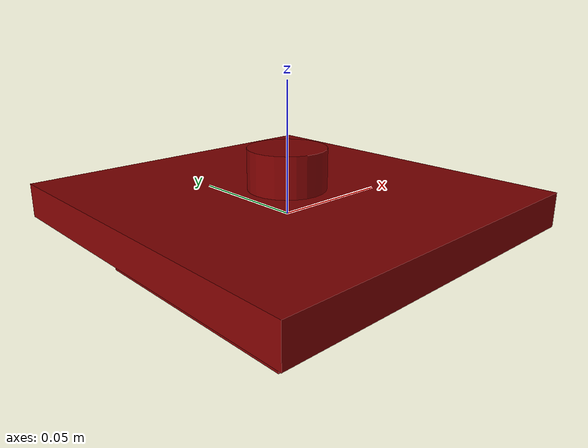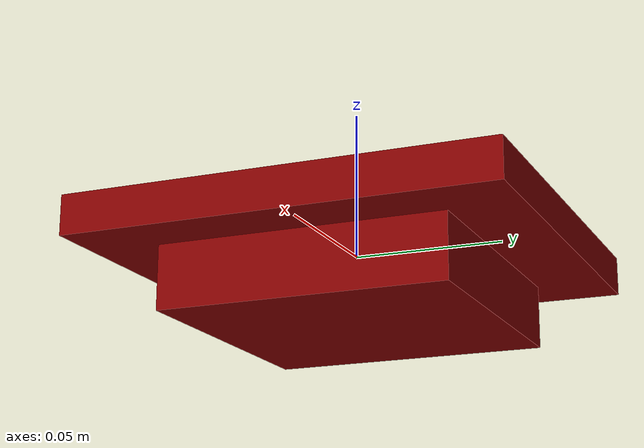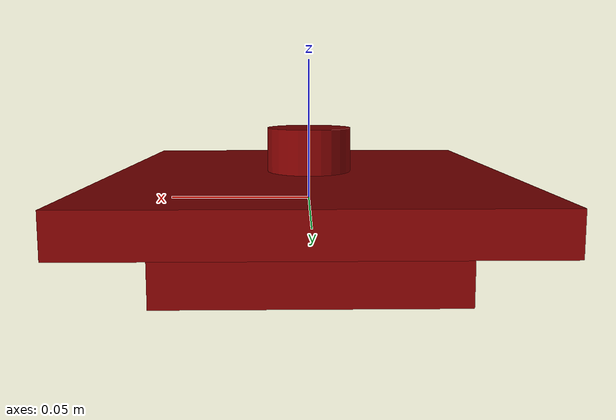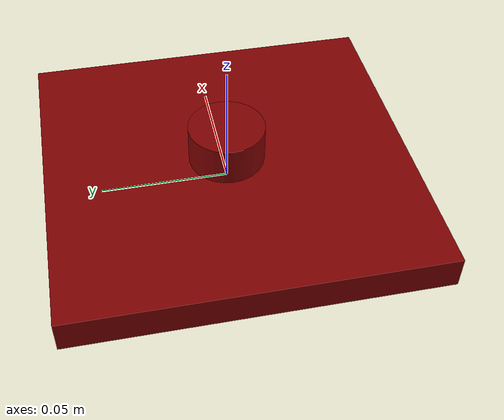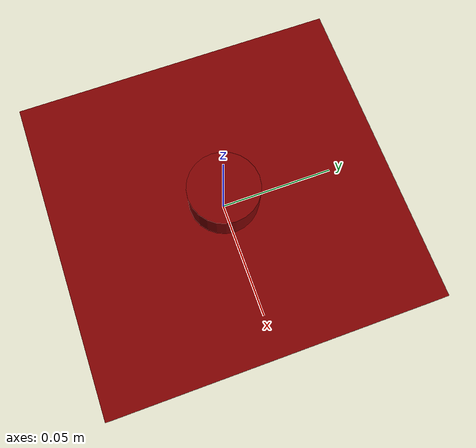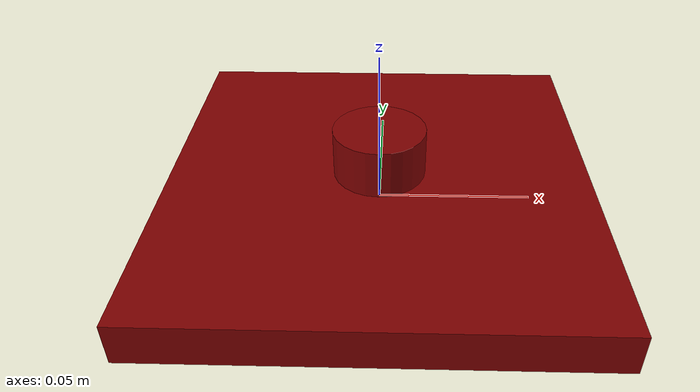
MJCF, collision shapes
<?xml version='1.0' encoding='UTF-8'?>
<mujoco model="model">
  <option timestep="0.002" gravity="0.0 0.0 -9.81"/>
  <compiler angle="radian"/>
  <asset>
    <mesh file="visuals/lid.obj" name="lid_vis"/>
    <texture file="visuals/T_BC001.png" name="lid_material" type="2d"/>
    <material name="lid_material" rgba="1 1 1 1.0" texture="lid_material" shininess="0.141421377658844" specular="0.3103448502657381"/>
  </asset>
  <default>
    <default class="visual">
      <geom conaffinity="0" contype="0" group="1" type="mesh"/>
    </default>
    <default class="collision">
      <geom group="0" rgba="0.5 0 0 0.5" density="1000" solref="0.01 1.8" solimp="0.8 0.95 0.02" condim="3"/>
    </default>
    <default class="spawn">
      <geom group="0" rgba="1 1 1 0.5" contype="0" conaffinity="0"/>
      <site group="0" rgba="1 1 1 0.5"/>
    </default>
    <default class="region">
      <geom group="1" conaffinity="0" contype="0" rgba="0 1 0 0" mass="0"/>
    </default>
  </default>
  <worldbody>
    <body>
      <body name="object">
        <geom mesh="lid_vis" type="mesh" solimp="0.998 0.998 0.001" solref="0.001 1" friction="0.95 0.3 0.1" class="visual" material="lid_material"/>
        <geom type="box" pos="-1.979060471057892e-09 0.0001858677715063095 -0.011879518628120422" size="0.048 0.048 0.012722664512693882" quat="1.0 0.0 0.0 0.0" class="collision"/>
        <geom type="box" pos="-1.979060471057892e-09 0.0001858677715063095 0.003336310386657715" size="0.06830225139856339 0.0714874193072319 0.006627364084124565" quat="1.0 0.0 0.0 0.0" class="collision"/>
        <geom type="cylinder" name="handle_main" pos="-2.153683453798294e-09 0.0001858677715063095 0.01616990566253662" size="0.015000270679593086 0.009463265538215637" quat="1.0 0.0 0.0 0.0" class="collision"/>
        <geom class="region" name="reg_main" density="0" type="box" pos="0.007939340000000003 0.008026400000000003 -0.0046720500000000005" size="0.075032 0.0780445 0.017564"/>
      </body>
    </body>
  </worldbody>
  <actuator/>
</mujoco>
